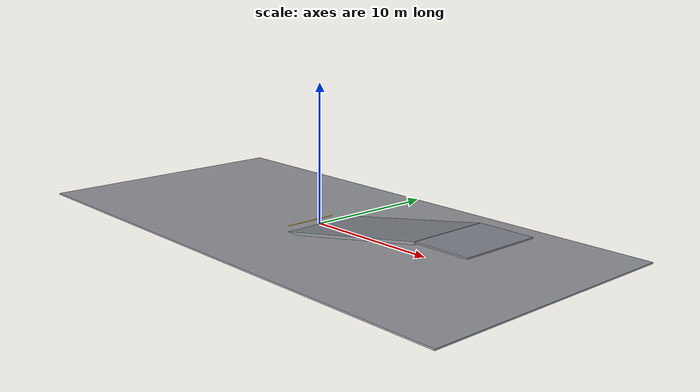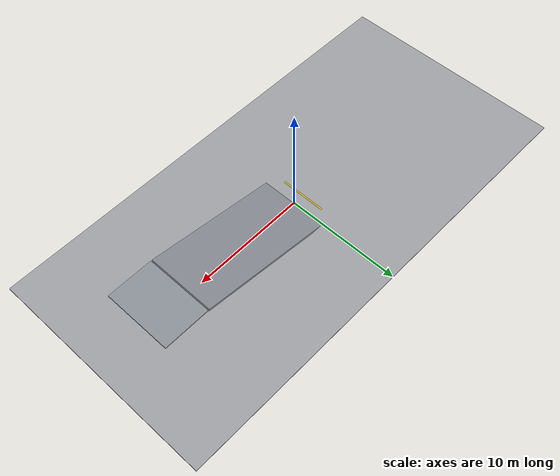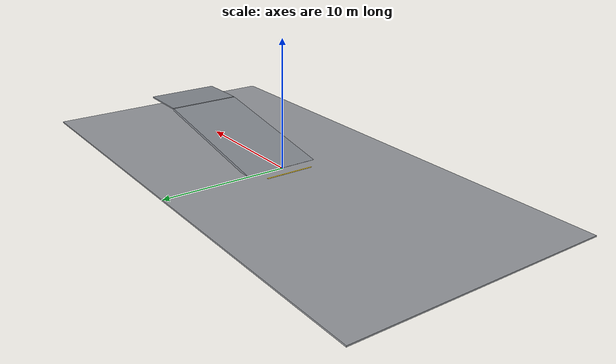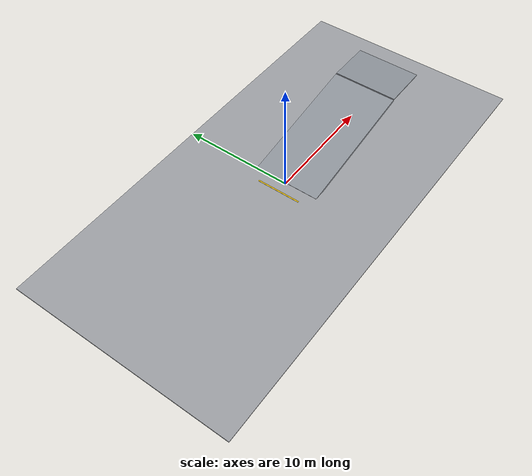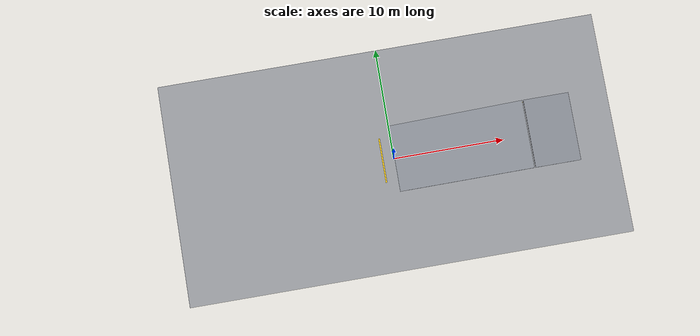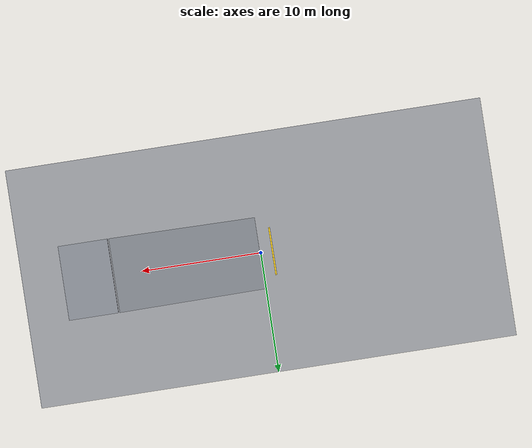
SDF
<?xml version="1.0"?>
<sdf version="1.6">
  <world name="slope">
    <include>
      <uri>model://sun</uri>
    </include>

    <physics type="ode">
      <max_step_size>0.001</max_step_size>
      <real_time_factor>1.0</real_time_factor>
      <real_time_update_rate>1000</real_time_update_rate>
      <ode>
        <solver>
          <type>quick</type>
          <iters>60</iters>
          <sor>1.3</sor>
        </solver>
        <constraints>
          <cfm>0.0</cfm>
          <erp>0.2</erp>
          <contact_max_correcting_vel>100.0</contact_max_correcting_vel>
          <contact_surface_layer>0.001</contact_surface_layer>
        </constraints>
      </ode>
    </physics>

    <scene>
      <ambient>0.55 0.55 0.55 1.0</ambient>
      <background>0.72 0.80 0.90 1.0</background>
      <shadows>true</shadows>
    </scene>

    <gui>
      <camera name="user_camera">
        <pose>5.0 -13.0 7.0 0 0.42 1.5708</pose>
      </camera>
    </gui>

    <model name="ground">
      <static>true</static>
      <pose>0 0 -0.05 0 0 0</pose>
      <link name="link">
        <collision name="collision">
          <geometry><box><size>40 20 0.1</size></box></geometry>
          <surface>
            <friction>
              <ode><mu>1.0</mu><mu2>1.0</mu2></ode>
            </friction>
          </surface>
        </collision>
        <visual name="visual">
          <geometry><box><size>40 20 0.1</size></box></geometry>
          <material>
            <ambient>0.52 0.53 0.55 1.0</ambient>
            <diffuse>0.62 0.63 0.65 1.0</diffuse>
          </material>
        </visual>
      </link>
    </model>

    <!-- 10 度斜坡：x=0 处高度为 0，x=12 处高度约 2.116 m -->
    <model name="slope_ramp">
      <static>true</static>
      <pose>6.0 0 0.9595 0 -0.174533 0</pose>
      <link name="link">
        <collision name="collision">
          <geometry><box><size>12 6 0.2</size></box></geometry>
          <surface>
            <friction>
              <ode><mu>1.0</mu><mu2>1.0</mu2></ode>
            </friction>
          </surface>
        </collision>
        <visual name="visual">
          <geometry><box><size>12 6 0.2</size></box></geometry>
          <material>
            <ambient>0.42 0.44 0.48 1.0</ambient>
            <diffuse>0.55 0.57 0.60 1.0</diffuse>
          </material>
        </visual>
      </link>
    </model>

    <!-- 斜坡顶部的水平平台 -->
    <model name="slope_plateau">
      <static>true</static>
      <pose>14.0 0 2.066 0 0 0</pose>
      <link name="link">
        <collision name="collision">
          <geometry><box><size>4 6 0.1</size></box></geometry>
          <surface>
            <friction>
              <ode><mu>1.0</mu><mu2>1.0</mu2></ode>
            </friction>
          </surface>
        </collision>
        <visual name="visual">
          <geometry><box><size>4 6 0.1</size></box></geometry>
          <material>
            <ambient>0.42 0.44 0.48 1.0</ambient>
            <diffuse>0.55 0.57 0.60 1.0</diffuse>
          </material>
        </visual>
      </link>
    </model>

    <!-- 斜坡两侧的黄色警示条（纯视觉） -->
    <model name="slope_edge_left">
      <static>true</static>
      <pose>6.0 2.82 1.02 0 -0.174533 0</pose>
      <link name="link">
        <visual name="visual">
          <geometry><box><size>12 0.08 0.04</size></box></geometry>
          <material><ambient>0.95 0.75 0.05 1.0</ambient><diffuse>1.0 0.82 0.08 1.0</diffuse></material>
        </visual>
      </link>
    </model>
    <model name="slope_edge_right">
      <static>true</static>
      <pose>6.0 -2.82 1.02 0 -0.174533 0</pose>
      <link name="link">
        <visual name="visual">
          <geometry><box><size>12 0.08 0.04</size></box></geometry>
          <material><ambient>0.95 0.75 0.05 1.0</ambient><diffuse>1.0 0.82 0.08 1.0</diffuse></material>
        </visual>
      </link>
    </model>

    <model name="start_line">
      <static>true</static>
      <pose>-1.0 0 0.006 0 0 0</pose>
      <link name="link">
        <visual name="visual">
          <geometry><box><size>0.12 4.0 0.012</size></box></geometry>
          <material><ambient>0.95 0.75 0.05 1.0</ambient><diffuse>1.0 0.82 0.08 1.0</diffuse></material>
        </visual>
      </link>
    </model>

  </world>
</sdf>
